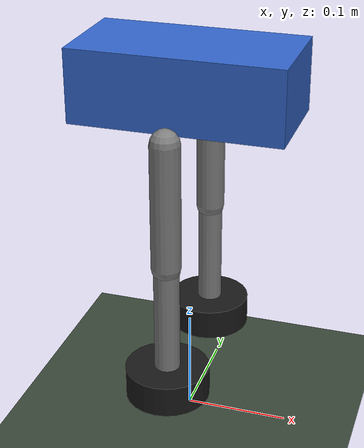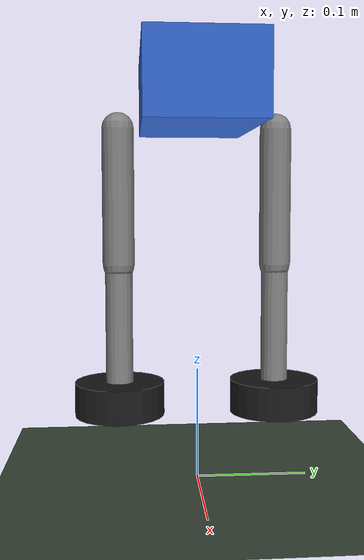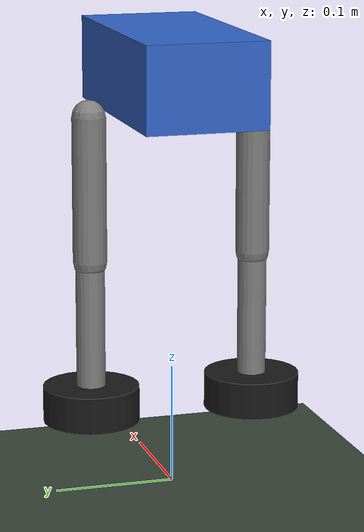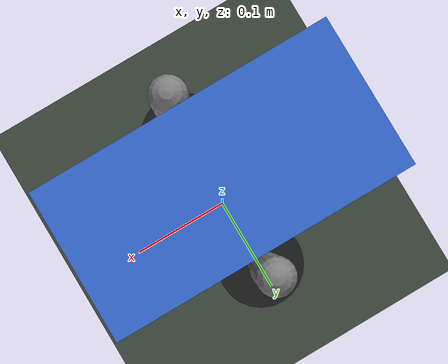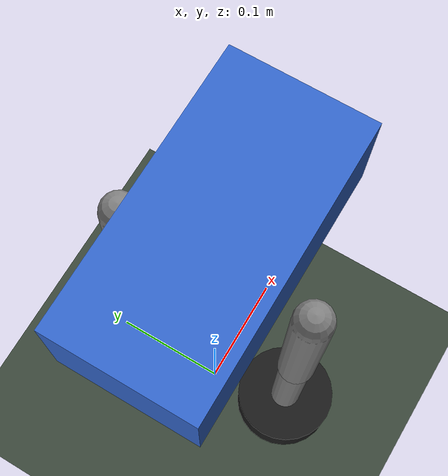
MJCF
<mujoco model="wheel_leg_robot">
  <compiler angle="radian" coordinate="local" autolimits="true"/>

  <option timestep="0.002" gravity="0 0 -9.81" iterations="50" tolerance="1e-8"/>

  <size nconmax="100" njmax="200"/>

  <default>
    <geom type="capsule" condim="4" friction="0.8 0.1 0.01"/>
    <joint damping="0.5" armature="0.01" stiffness="0"/>
    <motor ctrlrange="-20 20" ctrllimited="true"/>
    <position kp="200" kv="10"/>
  </default>

  <visual>
    <headlight diffuse="0.8 0.8 0.8" ambient="0.3 0.3 0.3"/>
    <rgba haze="0.15 0.25 0.35 1"/>
    <global azimuth="120" elevation="-15"/>
  </visual>

  <asset>
    <texture type="skybox" builtin="gradient" rgb1="0.4 0.6 0.8" rgb2="0.1 0.15 0.2" width="800" height="800"/>
    <texture name="grid" type="2d" builtin="checker" width="512" height="512" rgb1="0.2 0.25 0.2" rgb2="0.25 0.3 0.25"/>
    <material name="ground" texture="grid" texrepeat="8 8" reflectance="0.05"/>
  </asset>

  <worldbody>
    <light pos="0 2 3" dir="0 -1 -1" castshadow="true"/>
    <geom name="ground" type="plane" size="4 4 0.1" material="ground"/>

    <!-- ======= TORSO ======= -->
    <body name="torso" pos="0 0 0.35">
      <joint name="root" type="free"/>
      <inertial mass="1.5" pos="0 0 0" diaginertia="0.008 0.006 0.005"/>
      <geom name="torso" type="box" size="0.1 0.05 0.035" rgba="0.2 0.4 0.8 1"/>
      <site name="imu" pos="0 0 0" type="box" size="0.005 0.005 0.005"/>

      <!-- ======= LEFT LEG ======= -->
      <body name="left_thigh" pos="0 -0.07 -0.035">
        <joint name="left_hip" type="hinge" axis="0 1 0" range="-1.5 1.5" limited="true"/>
        <inertial mass="0.2" pos="0 0 -0.06" diaginertia="0.0005 0.0005 0.0005"/>
        <geom name="left_thigh" type="capsule" fromto="0 0 0 0 0 -0.12" size="0.014"/>

        <body name="left_shin" pos="0 0 -0.12">
          <joint name="left_knee" type="hinge" axis="0 1 0" range="-2.0 0" limited="true"/>
          <inertial mass="0.15" pos="0 0 -0.06" diaginertia="0.0003 0.0003 0.0003"/>
          <geom name="left_shin" type="capsule" fromto="0 0 0 0 0 -0.12" size="0.012"/>

          <body name="left_wheel" pos="0 0 -0.12">
            <joint name="left_wheel" type="hinge" axis="0 1 0"/>
            <inertial mass="0.08" pos="0 0 0" diaginertia="0.0003 0.0003 0.0003"/>
            <geom name="left_wheel" type="cylinder" size="0.04 0.015" rgba="0.1 0.1 0.1 1"/>
          </body>
        </body>
      </body>

      <!-- ======= RIGHT LEG ======= -->
      <body name="right_thigh" pos="0 0.07 -0.035">
        <joint name="right_hip" type="hinge" axis="0 1 0" range="-1.5 1.5" limited="true"/>
        <inertial mass="0.2" pos="0 0 -0.06" diaginertia="0.0005 0.0005 0.0005"/>
        <geom name="right_thigh" type="capsule" fromto="0 0 0 0 0 -0.12" size="0.014"/>

        <body name="right_shin" pos="0 0 -0.12">
          <joint name="right_knee" type="hinge" axis="0 1 0" range="-2.0 0" limited="true"/>
          <inertial mass="0.15" pos="0 0 -0.06" diaginertia="0.0003 0.0003 0.0003"/>
          <geom name="right_shin" type="capsule" fromto="0 0 0 0 0 -0.12" size="0.012"/>

          <body name="right_wheel" pos="0 0 -0.12">
            <joint name="right_wheel" type="hinge" axis="0 1 0"/>
            <inertial mass="0.08" pos="0 0 0" diaginertia="0.0003 0.0003 0.0003"/>
            <geom name="right_wheel" type="cylinder" size="0.04 0.015" rgba="0.1 0.1 0.1 1"/>
          </body>
        </body>
      </body>
    </body>
  </worldbody>

  <actuator>
    <position name="left_hip" joint="left_hip" kp="200" kv="10" ctrlrange="-1.5 1.5"/>
    <position name="left_knee" joint="left_knee" kp="200" kv="10" ctrlrange="-2.0 0"/>
    <motor name="left_wheel" joint="left_wheel" ctrlrange="-30 30"/>

    <position name="right_hip" joint="right_hip" kp="200" kv="10" ctrlrange="-1.5 1.5"/>
    <position name="right_knee" joint="right_knee" kp="200" kv="10" ctrlrange="-2.0 0"/>
    <motor name="right_wheel" joint="right_wheel" ctrlrange="-30 30"/>
  </actuator>

  <sensor>
    <framequat objtype="site" objname="imu" name="orientation"/>
    <gyro site="imu" name="gyro"/>
    <accelerometer site="imu" name="accelerometer"/>
    <jointpos joint="left_hip" name="left_hip_pos"/>
    <jointvel joint="left_hip" name="left_hip_vel"/>
    <jointpos joint="left_knee" name="left_knee_pos"/>
    <jointvel joint="left_knee" name="left_knee_vel"/>
    <jointpos joint="left_wheel" name="left_wheel_pos"/>
    <jointvel joint="left_wheel" name="left_wheel_vel"/>
    <jointpos joint="right_hip" name="right_hip_pos"/>
    <jointvel joint="right_hip" name="right_hip_vel"/>
    <jointpos joint="right_knee" name="right_knee_pos"/>
    <jointvel joint="right_knee" name="right_knee_vel"/>
    <jointpos joint="right_wheel" name="right_wheel_pos"/>
    <jointvel joint="right_wheel" name="right_wheel_vel"/>
  </sensor>
</mujoco>
